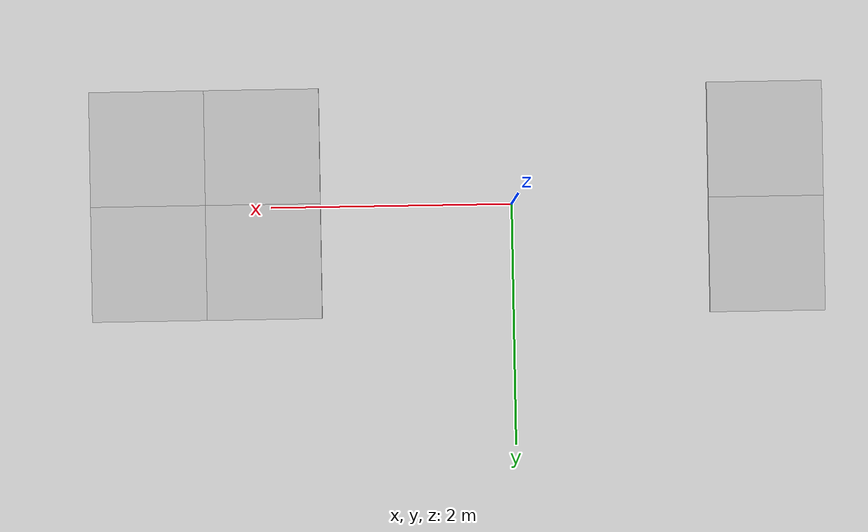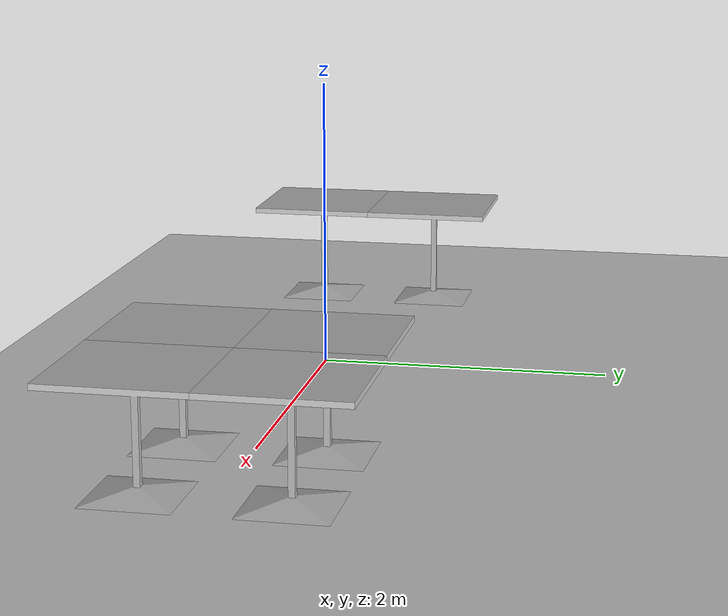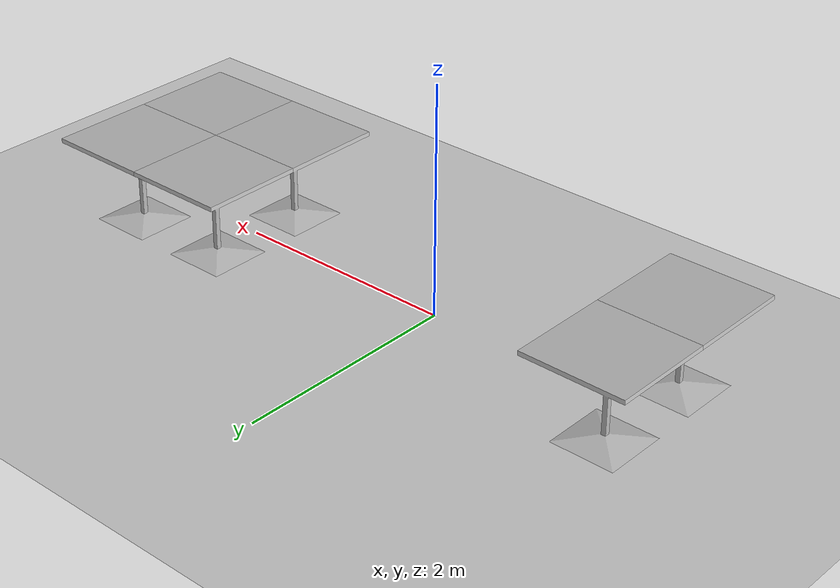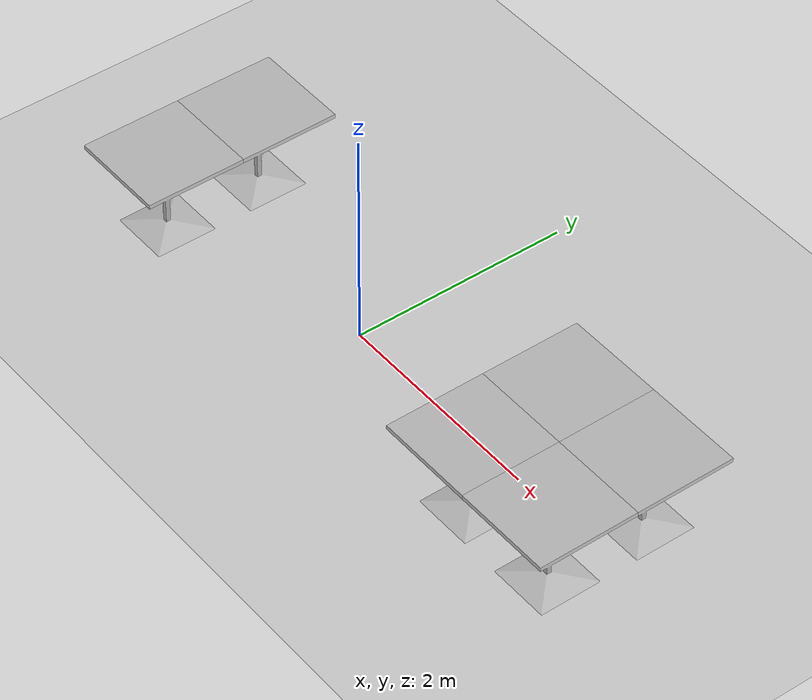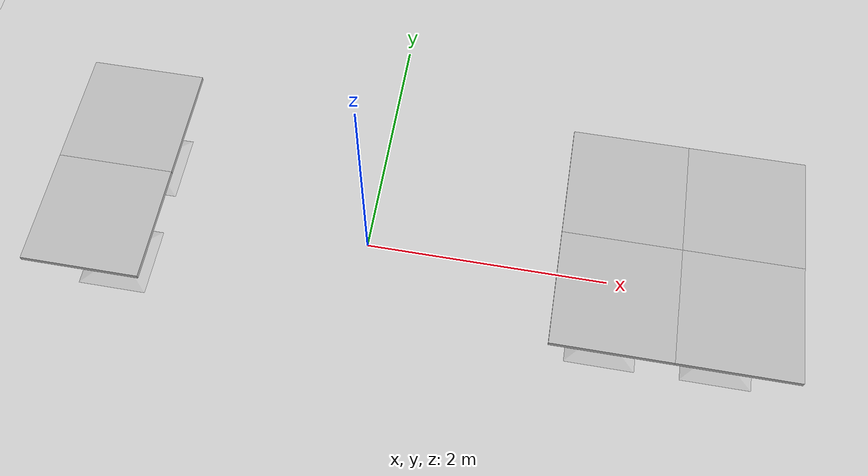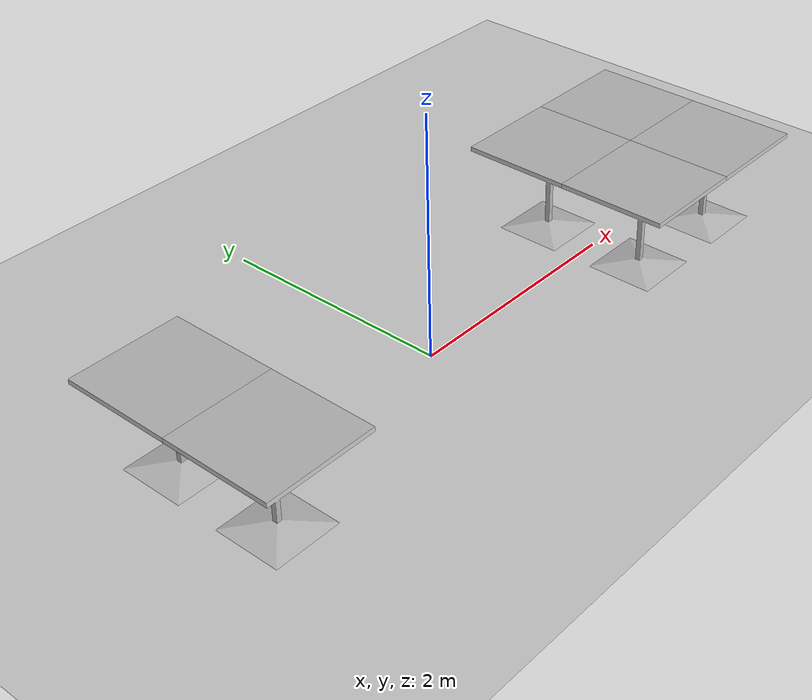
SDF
<sdf version="1.6">
 <world name="default">
  <light name="sun" type="directional">
   <pose>0 0 10 0 -0 0</pose>
   <diffuse>0.8 0.8 0.8 1</diffuse>
   <specular>0.2 0.2 0.2 1</specular>
   <attenuation>
    <range>1000</range>
    <constant>0.9</constant>
    <linear>0.01</linear>
    <quadratic>0.001</quadratic>
   </attenuation>
   <direction>-0.5 0.1 -0.9</direction>
  </light>
  <physics name="dart_2ms" default="1" type="dart">
   <max_step_size>0.002</max_step_size>
   <real_time_factor>1</real_time_factor>
   <real_time_update_rate>500</real_time_update_rate>
  </physics>
  <model name="ground_plane">
   <static>1</static>
   <link name="link">
    <collision name="collision">
     <geometry><plane><normal>0 0 1</normal><size>100 100</size></plane></geometry>
     <surface>
      <contact><collide_bitmask>65535</collide_bitmask></contact>
      <friction><ode><mu>100</mu><mu2>50</mu2></ode></friction>
     </surface>
    </collision>
    <visual name="visual">
     <cast_shadows>0</cast_shadows>
     <geometry><plane><normal>0 0 1</normal><size>100 100</size></plane></geometry>
     <material>
      <script><uri>file://media/materials/scripts/gazebo.material</uri><name>Gazebo/Grey</name></script>
     </material>
    </visual>
   </link>
  </model>
  <gravity>0 0 -9.8</gravity>
  <magnetic_field>6e-06 2.3e-05 -4.2e-05</magnetic_field>
  <atmosphere type="adiabatic"/>
  <scene><ambient>0.4 0.4 0.4 1</ambient><background>0.7 0.7 0.7 1</background><shadows>1</shadows></scene>
  <audio><device>default</device></audio>
  <spherical_coordinates>
   <surface_model>EARTH_WGS84</surface_model>
   <latitude_deg>0</latitude_deg>
   <longitude_deg>0</longitude_deg>
   <elevation>0</elevation>
   <heading_deg>0</heading_deg>
  </spherical_coordinates>
  <model name="cafe_table">
   <static>1</static>
   <link name="link">
    <collision name="surface">
     <pose>0 0 0.755 0 -0 0</pose>
     <geometry><box><size>0.913 0.913 0.04</size></box></geometry>
    </collision>
    <collision name="column">
     <pose>0 0 0.37 0 -0 0</pose>
     <geometry><box><size>0.042 0.042 0.74</size></box></geometry>
    </collision>
    <collision name="base">
     <pose>0 0 0.02 0 -0 0</pose>
     <geometry><box><size>0.56 0.56 0.04</size></box></geometry>
    </collision>
    <visual name="visual">
     <geometry><mesh><uri>model://cafe_table/meshes/cafe_table.dae</uri></mesh></geometry>
    </visual>
   </link>
   <pose>-2 -0.4565 0 0 -0 0</pose>
  </model>
  <model name="cafe_table_0">
   <static>1</static>
   <link name="link">
    <collision name="surface">
     <pose>0 0 0.755 0 -0 0</pose>
     <geometry><box><size>0.913 0.913 0.04</size></box></geometry>
    </collision>
    <collision name="column">
     <pose>0 0 0.37 0 -0 0</pose>
     <geometry><box><size>0.042 0.042 0.74</size></box></geometry>
    </collision>
    <collision name="base">
     <pose>0 0 0.02 0 -0 0</pose>
     <geometry><box><size>0.56 0.56 0.04</size></box></geometry>
    </collision>
    <visual name="visual">
     <geometry><mesh><uri>model://cafe_table/meshes/cafe_table.dae</uri></mesh></geometry>
    </visual>
   </link>
   <pose>-2 0.4565 0 0 -0 0</pose>
  </model>
  <model name="cafe_table_1">
   <static>1</static>
   <link name="link">
    <collision name="surface">
     <pose>0 0 0.755 0 -0 0</pose>
     <geometry><box><size>0.913 0.913 0.04</size></box></geometry>
    </collision>
    <collision name="column">
     <pose>0 0 0.37 0 -0 0</pose>
     <geometry><box><size>0.042 0.042 0.74</size></box></geometry>
    </collision>
    <collision name="base">
     <pose>0 0 0.02 0 -0 0</pose>
     <geometry><box><size>0.56 0.56 0.04</size></box></geometry>
    </collision>
    <visual name="visual">
     <geometry><mesh><uri>model://cafe_table/meshes/cafe_table.dae</uri></mesh></geometry>
    </visual>
   </link>
   <pose>2 0.4565 0 0 -0 0</pose>
  </model>
  <model name="cafe_table_2">
   <static>1</static>
   <link name="link">
    <collision name="surface">
     <pose>0 0 0.755 0 -0 0</pose>
     <geometry><box><size>0.913 0.913 0.04</size></box></geometry>
    </collision>
    <collision name="column">
     <pose>0 0 0.37 0 -0 0</pose>
     <geometry><box><size>0.042 0.042 0.74</size></box></geometry>
    </collision>
    <collision name="base">
     <pose>0 0 0.02 0 -0 0</pose>
     <geometry><box><size>0.56 0.56 0.04</size></box></geometry>
    </collision>
    <visual name="visual">
     <geometry><mesh><uri>model://cafe_table/meshes/cafe_table.dae</uri></mesh></geometry>
    </visual>
   </link>
   <pose>2 -0.4565 0 0 -0 0</pose>
  </model>
  <model name="cafe_table_3">
   <static>1</static>
   <link name="link">
    <collision name="surface">
     <pose>0 0 0.755 0 -0 0</pose>
     <geometry><box><size>0.913 0.913 0.04</size></box></geometry>
    </collision>
    <collision name="column">
     <pose>0 0 0.37 0 -0 0</pose>
     <geometry><box><size>0.042 0.042 0.74</size></box></geometry>
    </collision>
    <collision name="base">
     <pose>0 0 0.02 0 -0 0</pose>
     <geometry><box><size>0.56 0.56 0.04</size></box></geometry>
    </collision>
    <visual name="visual">
     <geometry><mesh><uri>model://cafe_table/meshes/cafe_table.dae</uri></mesh></geometry>
    </visual>
   </link>
   <pose>2.913 0.4565 0 0 -0 0</pose>
  </model>
  <model name="cafe_table_4">
   <static>1</static>
   <link name="link">
    <collision name="surface">
     <pose>0 0 0.755 0 -0 0</pose>
     <geometry><box><size>0.913 0.913 0.04</size></box></geometry>
    </collision>
    <collision name="column">
     <pose>0 0 0.37 0 -0 0</pose>
     <geometry><box><size>0.042 0.042 0.74</size></box></geometry>
    </collision>
    <collision name="base">
     <pose>0 0 0.02 0 -0 0</pose>
     <geometry><box><size>0.56 0.56 0.04</size></box></geometry>
    </collision>
    <visual name="visual">
     <geometry><mesh><uri>model://cafe_table/meshes/cafe_table.dae</uri></mesh></geometry>
    </visual>
   </link>
   <pose>2.913 -0.4565 0 0 -0 0</pose>
  </model>
 </world>
</sdf>
